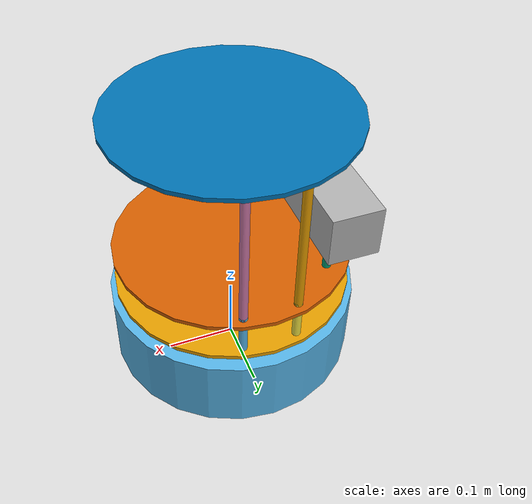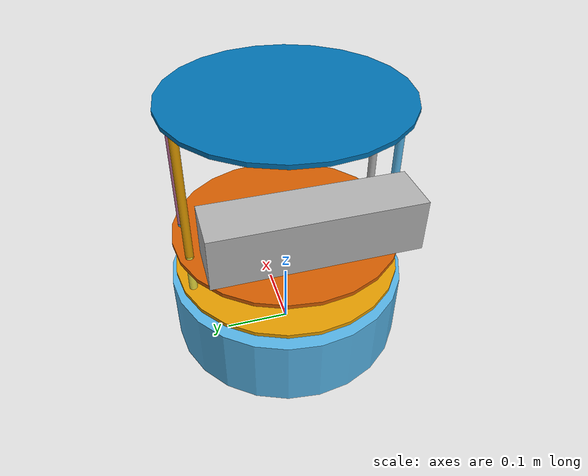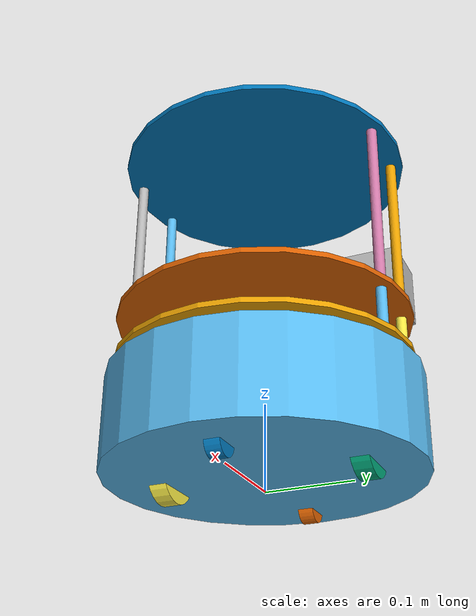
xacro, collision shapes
<?xml version="1.0"?>
<robot name="arm" xmlns:xacro="http://www.ros.org/wiki/xacro">

    <xacro:arg name="robot_namespace" default="/" />
    <xacro:arg name="MAX_ANGLE"       default="1" />
    <xacro:arg name="MIN_ANGLE"       default="-1" />
    <xacro:arg name="SPEED_ANGLE"     default="1" />
    <xacro:arg name="lidar_high"      default = "0.66053"/>
    <xacro:arg name="prefix"          default = "car"/>

    <xacro:include filename="$(find kobuki_gazebo)/urdf/xacro/gazebo/kobuki_base_description.urdf.xacro" />
    <xacro:kobuki/>

    <xacro:include filename="$(find kobuki_gazebo)/urdf/xacro/gazebo/hexagons.urdf.xacro"/>
    <xacro:stack_hexagons parent="base_link"/>

    <xacro:include filename="$(find kobuki_gazebo)/urdf/xacro/sensors/kinect.urdf.xacro"/>
    <xacro:sensor_kinect  parent="base_link"/>

    <gazebo>
      <plugin name="gazebo_ros_control" filename="libgazebo_ros_control.so">
        <robotNamespace>$(arg robot_namespace)</robotNamespace>
        <controlPeriod>0.01</controlPeriod>
        <robotSimType>gazebo_ros_control/DefaultRobotHWSim</robotSimType>
      </plugin>
    </gazebo>

</robot>

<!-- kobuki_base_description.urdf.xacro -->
<robot name="mbot" xmlns:xacro="http://www.ros.org/wiki/xacro">

    <!-- PROPERTY LIST -->
    <xacro:property name="M_PI" value="3.14159265354"/>

    <!-- body -->
    <xacro:property name="body_mass"   value="10" />
    <xacro:property name="body_h"            value="0.3"/>
    <xacro:property name="body_w"            value="0.85"/>
    <xacro:property name="body_l"              value="0.8"/>

    <!-- wheel_front -->
    <xacro:property name="wheel_front_mass"   value="1" />
    <xacro:property name="wheel_front_radius" value="0.125"/>
    <xacro:property name="wheel_front_x"            value="-0.3" />
    <xacro:property name="wheel_front_y"            value="0"/>
    <xacro:property name="wheel_front_z"             value="-0.1625"/>

     <!-- wheel_rear-->
    <xacro:property name="wheel_rear_mass"   value="1" />
    <xacro:property name="wheel_rear_radius" value="0.125"/>
    <xacro:property name="wheel_rear_x"            value="0.3" />
    <xacro:property name="wheel_rear_y"            value="0"/>
    <xacro:property name="wheel_rear_z"             value="-0.1625"/>

    <!-- wheel_left -->
    <xacro:property name="wheel_left_mass"   value="3" />
    <xacro:property name="wheel_left_radius" value="0.125"/>
    <xacro:property name="wheel_left_h"           value="0.06"/>
    <xacro:property name="wheel_left_x"            value="0" />
    <xacro:property name="wheel_left_y"            value="-0.38"/>
    <xacro:property name="wheel_left_z"             value="-0.1"/>

    <!-- wheel_right -->
    <xacro:property name="wheel_right_mass"   value="3" />
    <xacro:property name="wheel_right_radius" value="0.125"/>
    <xacro:property name="wheel_right_h"           value="0.06"/>
    <xacro:property name="wheel_right_x"            value="0" />
    <xacro:property name="wheel_right_y"            value="0.38"/>
    <xacro:property name="wheel_right_z"             value="-0.1"/>

    <xacro:property name="wheel_Separation"         value="0.76"/>
    <xacro:property name="wheel_diameter"             value="0.25"/>

    <!-- Defining the colors used in this robot -->
    <material name="yellow">
        <color rgba="1 0.4 0 1"/>
    </material>
    <material name="black">
        <color rgba="0 0 0 0.95"/>
    </material>
    <material name="gray">
        <color rgba="0.75 0.75 0.75 1"/>
    </material>
    <material name="white">
        <color rgba="1 1 1 1"/>
    </material>
    <material name="orange">
        <color rgba="1 0.27 0 1"/>
    </material>

    <!-- Macro for inertia matrix -->
    <xacro:macro name="box_inertial_matrix" params="m l w h">
        <inertial>
            <mass value="${m}" />
            <inertia ixx="${m*(h*h + l*l)/12}" ixy = "0" ixz = "0"
                iyy="${m*(w*w + l*l)/12}" iyz= "0"
                izz="${m*(w*w + h*h)/12}" />
        </inertial>
    </xacro:macro>

    <xacro:macro name="sphere_inertial_matrix" params="m r">
        <inertial>
            <mass value="${m}" />
            <inertia ixx="${2*m*r*r/5}" ixy="0" ixz="0"
                iyy="${2*m*r*r/5}" iyz="0"
                izz="${2*m*r*r/5}" />
        </inertial>
    </xacro:macro>

    <xacro:macro name="cylinder_inertial_matrix" params="m r h">
        <inertial>
            <mass value="${m}" />
            <inertia ixx="${m*(3*r*r+h*h)/12}" ixy = "0" ixz = "0"
                iyy="${m*(3*r*r+h*h)/12}" iyz = "0"
                izz="${m*r*r/2}" />
        </inertial>
    </xacro:macro>

    <xacro:macro name="kobuki">
        <link name="base_footprint"/>
            <joint name="base_joint" type="fixed">
            <origin xyz="0 0 0.0102" rpy="0 0 0" />
            <parent link="base_footprint"/>
            <child link="base_link" />
        </joint>
        <link name="base_link">
            <visual>
                <geometry>
                <!-- new mesh -->
                    <mesh filename="$(find kobuki_gazebo)/meshes/kobuki_robot/meshes/main_body.dae"/>
                </geometry>
                <origin xyz="0.001 0 0.05199" rpy="0 0 0"/>
            </visual>
            <collision name="base">
                <geometry>
                <cylinder length="0.10938" radius="0.178"/>
                </geometry>
                <origin xyz="0.0 0 0.05949" rpy="0 0 0"/>
            </collision>
            <inertial>
                <!-- COM experimentally determined -->
                <origin xyz="0.01 0 0"/>
                <mass value="2.4"/> <!-- 2.4/2.6 kg for small/big battery pack -->
                <inertia ixx="0.019995" ixy="0.0" ixz="0.0"
                        iyy="0.019995" iyz="0.0"
                        izz="0.03675" />
            </inertial>
        </link>

        <joint name="wheel_left_joint" type="continuous">
            <parent link="base_link"/>
            <child link="wheel_left_link"/>
            <origin xyz="0.00 ${0.23/2} 0.0250" rpy="${-M_PI/2} 0 0"/>
            <axis xyz="0 0 1"/>
        </joint>
        <link name="wheel_left_link">
            <visual>
                <geometry>
                    <mesh filename="$(find kobuki_gazebo)/meshes/kobuki_robot/meshes/wheel.dae"/>
                </geometry>
                <origin xyz="0 0 0" rpy="0 0 0"/>
            </visual>
            <collision>
                <geometry>
                <cylinder length="0.0206" radius="0.0352"/>
                </geometry>
                <origin rpy="0 0 0" xyz="0 0 0"/>
            </collision>
            <inertial>
                <mass value="0.01" />
                <origin xyz="0 0 0" />
                <inertia ixx="0.001" ixy="0.0" ixz="0.0"
                        iyy="0.001" iyz="0.0"
                        izz="0.001" />
            </inertial>
        </link>

        <joint name="wheel_right_joint" type="continuous">
            <parent link="base_link"/>
            <child link="wheel_right_link"/>
            <origin xyz="0.00 -${0.23/2} 0.0250" rpy="${-M_PI/2} 0 0"/>
            <axis xyz="0 0 1"/>
        </joint>
        <link name="wheel_right_link">
            <visual>
                <geometry>
                    <mesh filename="$(find kobuki_gazebo)/meshes/kobuki_robot/meshes/wheel.dae"/>
                </geometry>
                <origin xyz="0 0 0" rpy="0 0 0"/>
            </visual>
            <collision>
                <geometry>
                <cylinder length="0.0206" radius="0.0350"/>
                </geometry>
                <origin rpy="0 0 0" xyz="0 0 0"/>
            </collision>
            <inertial>
                <mass value="0.01" />
                <origin xyz="0 0 0" />
                <inertia ixx="0.001" ixy="0.0" ixz="0.0"
                        iyy="0.001" iyz="0.0"
                        izz="0.001" />
            </inertial>
        </link>

        <joint name="caster_front_joint" type="fixed">
            <parent link="base_link"/>
            <child link="caster_front_link"/>
            <origin xyz="0.115 0.0 0.007" rpy="${-M_PI/2} 0 0"/>
        </joint>
        <link name="caster_front_link">
            <collision>
                <geometry>
                <cylinder length="0.0176" radius="0.017"/>
                </geometry>
                <origin rpy="0 0 0" xyz="0 0 0"/>
            </collision>
            <inertial>
                <mass value="0.01" />
                <origin xyz="0 0 0" />
                <inertia ixx="0.001" ixy="0.0" ixz="0.0"
                        iyy="0.001" iyz="0.0"
                        izz="0.001" />
            </inertial>
        </link>

        <joint name="caster_back_joint" type="fixed">
            <parent link="base_link"/>
            <child link="caster_back_link"/>
            <origin xyz="-0.135 0.0 0.009" rpy="${-M_PI/2} 0 0"/>
        </joint>
        <link name="caster_back_link">
            <collision>
                <geometry>
                <cylinder length="0.0176" radius="0.017"/>
                </geometry>
                <origin rpy="0 0 0" xyz="0 0 0"/>
            </collision>
            <inertial>
                <mass value="0.01" />
                <origin xyz="0 0 0" />
                <inertia ixx="0.001" ixy="0.0" ixz="0.0"
                        iyy="0.001" iyz="0.0"
                        izz="0.001" />
            </inertial>
        </link>

        <!-- Kobuki's sensors -->
        <joint name="gyro_joint" type="fixed">
            <axis xyz="0 1 0"/>
            <origin xyz="0.056 0.062 0.0202" rpy="0 0 0"/>
            <parent link="base_link"/>
            <child link="gyro_link"/>
        </joint>
        <link name="gyro_link">
            <inertial>
                <mass value="0.001"/>
                <origin xyz="0 0 0" rpy="0 0 0"/>
                <inertia ixx="0.0001" ixy="0" ixz="0"
                        iyy="0.000001" iyz="0"
                        izz="0.0001"/>
            </inertial>
        </link>

        <joint name="cliff_sensor_left_joint" type="fixed">
            <origin xyz="0.08734 0.13601 0.0214" rpy="0 ${M_PI/2} 0" />
            <parent link="base_link"/>
            <child link="cliff_sensor_left_link" />
        </joint>
        <link name="cliff_sensor_left_link">
            <inertial>
                <mass value="0.0001" />
                <origin xyz="0 0 0" />
                <inertia ixx="0.0001" ixy="0.0" ixz="0.0"
                        iyy="0.0001" iyz="0.0"
                        izz="0.0001" />
            </inertial>
        </link>

        <joint name="cliff_sensor_right_joint" type="fixed">
            <origin xyz="0.085 -0.13601 0.0214" rpy="0 ${M_PI/2} 0" />
            <parent link="base_link"/>
            <child link="cliff_sensor_right_link" />
        </joint>
        <link name="cliff_sensor_right_link">
            <inertial>
                <mass value="0.0001" />
                <origin xyz="0 0 0" />
                <inertia ixx="0.0001" ixy="0.0" ixz="0.0"
                        iyy="0.0001" iyz="0.0"
                        izz="0.0001" />
            </inertial>
        </link>

        <joint name="cliff_sensor_front_joint" type="fixed">
            <origin xyz="0.156 0.00 0.0214" rpy="0 ${M_PI/2} 0" />
            <parent link="base_link"/>
            <child link="cliff_sensor_front_link" />
        </joint>
        <link name="cliff_sensor_front_link">
            <inertial>
                <mass value="0.0001" />
                <origin xyz="0 0 0" />
                <inertia ixx="0.0001" ixy="0.0" ixz="0.0"
                        iyy="0.0001" iyz="0.0"
                        izz="0.0001" />
            </inertial>
        </link>

        <!-- Kobuki Gazebo simulation details -->
        <gazebo reference="wheel_left_link">
            <mu1>1.0</mu1>
            <mu2>1.0</mu2>
            <kp>1000000.0</kp>
            <kd>100.0</kd>
            <minDepth>0.001</minDepth>
            <maxVel>1.0</maxVel>
        </gazebo>

        <gazebo reference="wheel_right_link">
            <mu1>1.0</mu1>
            <mu2>1.0</mu2>
            <kp>1000000.0</kp>
            <kd>100.0</kd>
            <minDepth>0.001</minDepth>
            <maxVel>1.0</maxVel>
        </gazebo>

        <gazebo reference="caster_front_link">
            <mu1>0.0</mu1>
            <mu2>0.0</mu2>
            <kp>1000000.0</kp>
            <kd>100.0</kd>
            <minDepth>0.001</minDepth>
            <maxVel>1.0</maxVel>
        </gazebo>

        <gazebo reference="caster_back_link">
            <mu1>0.0</mu1>
            <mu2>0.0</mu2>
            <kp>1000000.0</kp>
            <kd>100.0</kd>
            <minDepth>0.001</minDepth>
            <maxVel>1.0</maxVel>
        </gazebo>

        <gazebo reference="base_link">
            <mu1>0.3</mu1>
            <mu2>0.3</mu2>
            <sensor type="contact" name="bumpers">
                <always_on>true</always_on>
                <update_rate>50.0</update_rate>
                <visualize>true</visualize>
                <contact>
                    <collision>base_footprint_fixed_joint_lump__base_collision</collision>
                </contact>
                <plugin name="bumper_plugin" filename="libgazebo_ros_bumper.so">
                    <bumperTopicName>contact_state</bumperTopicName>
                </plugin>
            </sensor>
        </gazebo>

        <gazebo reference="cliff_sensor_left_link">
            <sensor type="ray" name="cliff_sensor_left">
                <always_on>true</always_on>
                <update_rate>50</update_rate>
                <visualize>true</visualize>
                <ray>
                    <scan>
                        <horizontal>
                            <samples>50</samples>
                            <resolution>1.0</resolution>
                            <min_angle>-0.0436</min_angle>  <!-- -2.5 degree -->
                            <max_angle>0.0436</max_angle> <!-- 2.5 degree -->
                        </horizontal>
                    </scan>
                    <range>
                        <min>0.01</min>
                        <max>0.15</max>
                        <resolution>1.0</resolution>
                    </range>
                </ray>
            </sensor>
        </gazebo>

        <gazebo reference="cliff_sensor_right_link">
            <sensor type="ray" name="cliff_sensor_right">
                <always_on>true</always_on>
                <update_rate>50</update_rate>
                <visualize>true</visualize>
                <ray>
                    <scan>
                        <horizontal>
                            <samples>50</samples>
                            <resolution>1.0</resolution>
                            <min_angle>-0.0436</min_angle>  <!-- -2.5 degree -->
                            <max_angle>0.0436</max_angle> <!-- 2.5 degree -->
                        </horizontal>
                    </scan>
                    <range>
                        <min>0.01</min>
                        <max>0.15</max>
                        <resolution>1.0</resolution>
                    </range>
                </ray>
            </sensor>
        </gazebo>

        <gazebo reference="cliff_sensor_front_link">
            <sensor type="ray" name="cliff_sensor_front">
                <always_on>true</always_on>
                <update_rate>50</update_rate>
                <visualize>true</visualize>
                <ray>
                    <scan>
                        <horizontal>
                            <samples>50</samples>
                            <resolution>1.0</resolution>
                            <min_angle>-0.0436</min_angle>  <!-- -2.5 degree -->
                            <max_angle>0.0436</max_angle> <!-- 2.5 degree -->
                        </horizontal>
                    </scan>
                    <range>
                        <min>0.01</min>
                        <max>0.15</max>
                        <resolution>1.0</resolution>
                    </range>
                </ray>
            </sensor>
        </gazebo>

        <gazebo reference="gyro_link">
            <sensor type="imu" name="imu">
                <always_on>true</always_on>
                <update_rate>50</update_rate>
                <visualize>false</visualize>
                <imu>
                    <noise>
                        <type>gaussian</type>
                        <rate>
                            <mean>0.0</mean>
                            <stddev>${0.0014*0.0014}</stddev> <!-- 0.25 x 0.25 (deg/s) -->
                            <bias_mean>0.0</bias_mean>
                            <bias_stddev>0.0</bias_stddev>
                        </rate>
                            <accel> <!-- not used in the plugin and real robot, hence using tutorial values -->
                                <mean>0.0</mean>
                                <stddev>1.7e-2</stddev>
                                <bias_mean>0.1</bias_mean>
                                <bias_stddev>0.001</bias_stddev>
                            </accel>
                    </noise>
                </imu>
            </sensor>
        </gazebo>

        <gazebo>
            <plugin name="kobuki_controller" filename="libgazebo_ros_kobuki.so">
                <publish_tf>1</publish_tf>
                <left_wheel_joint_name>wheel_left_joint</left_wheel_joint_name>
                <right_wheel_joint_name>wheel_right_joint</right_wheel_joint_name>
                <wheel_separation>.230</wheel_separation>
                <wheel_diameter>0.070</wheel_diameter>
                <torque>1.0</torque>
                <velocity_command_timeout>0.6</velocity_command_timeout>
                <cliff_sensor_left_name>cliff_sensor_left</cliff_sensor_left_name>
                <cliff_sensor_center_name>cliff_sensor_front</cliff_sensor_center_name>
                <cliff_sensor_right_name>cliff_sensor_right</cliff_sensor_right_name>
                <cliff_detection_threshold>0.04</cliff_detection_threshold>
                <bumper_name>bumpers</bumper_name>
                <imu_name>imu</imu_name>
            </plugin>
        </gazebo>

        <gazebo>
            <plugin name="differential_drive_controller"  filename="libgazebo_ros_diff_drive.so">
                <alwaysOn>true</alwaysOn>
                <publishWheelTF>true</publishWheelTF>
                <rosDebugLevel>Debug</rosDebugLevel>
                <robotNamespace>/</robotNamespace>
                <publishTf>1</publishTf>
                <publishWheelJointState>true</publishWheelJointState>
                <alwaysOn>true</alwaysOn>
                <updateRate>100.0</updateRate>
                <legacyMode>true</legacyMode>
                <leftJoint>wheel_left_joint</leftJoint>
                <rightJoint>wheel_right_joint</rightJoint>
                <wheelSeparation>.230</wheelSeparation>
                <wheelDiameter>0.070</wheelDiameter>
                <broadcastTF>0.1</broadcastTF>
                <wheelTorque>1</wheelTorque>
                <wheelAcceleration>1</wheelAcceleration>
                <commandTopic>/kabuki/cmd_vel</commandTopic>
                <odometryFrame>odom</odometryFrame>
                <odometryTopic>/kabuki/odom</odometryTopic>
                <robotBaseFrame>base_link</robotBaseFrame>
                <publishOdomTF>true</publishOdomTF>
                <odometrySource>world</odometrySource>
            </plugin>
        </gazebo>
    </xacro:macro>
</robot>

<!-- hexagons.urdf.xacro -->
<!--
  Hexagon stacks
 -->
<robot name="stack_hexagons" xmlns:xacro="http://ros.org/wiki/xacro">

  <!-- Xacro macros -->
  <!-- Pole macros -->
  <xacro:macro name="stack_bottom_pole" params="parent number x_loc y_loc z_loc">
    <joint name="pole_bottom_${number}_joint" type="fixed">
      <origin xyz="${x_loc} ${y_loc} ${z_loc}" rpy="0 0 0"/>
      <parent link="${parent}"/>
      <child link="pole_bottom_${number}_link"/>
    </joint>
    <link name="pole_bottom_${number}_link">
      <visual>
        <origin xyz="0 0 0" rpy="0 0 0"/>
        <geometry>
          <mesh filename="$(find kobuki_gazebo)/meshes/kobuki_robot/stacks/hexagons/pole_bottom.dae"/>
        </geometry>
      </visual>
      <collision>
        <origin xyz="0 0 0" rpy="0 0 0"/>
        <geometry>
          <cylinder length="0.0492" radius="0.006"/>
        </geometry>
      </collision>
      <inertial>
        <mass value="0.008"/>
        <origin xyz="0 0 0" rpy="0 0 0"/>
        <inertia ixx="0.000001686" ixy="0.0" ixz="0.0"
                 iyy="0.000001686" iyz="0.0"
                 izz="0.000000144"/>
      </inertial>
    </link>
  </xacro:macro>

  <xacro:macro name="stack_middle_pole" params="parent number x_loc y_loc z_loc">
    <joint name="pole_middle_${number}_joint" type="fixed">
      <origin xyz="${x_loc} ${y_loc} ${z_loc}" rpy="0 0 0" />
      <parent link="${parent}"/>
      <child link="pole_middle_${number}_link"/>
    </joint>
    <link name="pole_middle_${number}_link">
      <visual>
        <origin xyz="0 0 0" rpy="0 ${M_PI} 0"/>
        <geometry>
          <mesh filename="$(find kobuki_gazebo)/meshes/kobuki_robot/stacks/hexagons/pole_middle.dae"/>
        </geometry>
      </visual>
      <collision>
        <origin xyz="0 0 0" rpy="0 0 0"/>
        <geometry>
          <cylinder length="0.0608" radius="0.006"/>
        </geometry>
      </collision>
      <inertial>
        <mass value="0.012"/>
        <origin xyz="0 0 0"/>
        <inertia ixx="0.000003805" ixy="0.0" ixz="0.0"
                 iyy="0.000003805" iyz="0.0"
                 izz="0.000000216"/>
      </inertial>
    </link>
  </xacro:macro>

  <xacro:macro name="stack_top_pole" params="parent number x_loc y_loc z_loc">
    <joint name="pole_top_${number}_joint" type="fixed">
      <origin xyz="${x_loc} ${y_loc} ${z_loc}" rpy="0 0 0"/>
      <parent link="${parent}"/>
      <child link="pole_top_${number}_link"/>
    </joint>
    <link name="pole_top_${number}_link">
      <visual>
        <origin xyz=" 0 0 0" rpy="0 0 0"/>
        <geometry>
          <mesh filename="$(find kobuki_gazebo)/meshes/kobuki_robot/stacks/hexagons/pole_top.dae"/>
        </geometry>
      </visual>
      <collision>
        <origin xyz="0 0 0" rpy="0 0 0"/>
        <geometry>
          <cylinder length="0.2032" radius="0.006"/>
        </geometry>
      </collision>
      <inertial>
        <mass value="0.060"/>
        <origin xyz="0 0 0"/>
        <inertia ixx="0.000206991" ixy="0.0" ixz="0.0"
                 iyy="0.000206991" iyz="0.0"
                 izz="0.000001080"/>
      </inertial>
    </link>
  </xacro:macro>

  <xacro:macro name="stack_3d_sensor_pole" params="parent number x_loc y_loc z_loc">
    <joint name="pole_kinect_${number}_joint" type="fixed">
      <origin xyz="${x_loc} ${y_loc} ${z_loc}" rpy="0 0 0"/>
      <parent link="${parent}"/>
      <child link="pole_kinect_${number}_link"/>
    </joint>
    <link name="pole_kinect_${number}_link">
      <visual>
        <origin xyz="0 0 -0.01" rpy="0 0 0"/>
        <geometry>
          <mesh filename="$(find kobuki_gazebo)/meshes/kobuki_robot/sensors/sensor_pole.dae" />
        </geometry>
      </visual>
      <collision>
        <origin xyz="0 0 0" rpy="0 0 0"/>
        <geometry>
          <cylinder length="0.0936" radius="0.006"/>
        </geometry>
      </collision>
      <inertial>
        <mass value="0.020"/>
        <origin xyz="0 0 0"/>
        <inertia ixx="0.000014782" ixy="0.0" ixz="0.0"
                 iyy="0.000014782" iyz="0.0"
                 izz="0.000000360"/>
      </inertial>
    </link>
  </xacro:macro>

  <xacro:macro name="stack_hexagons" params="parent">
    <xacro:stack_bottom_pole parent="${parent}" number="0" x_loc= "0.120" y_loc= "0.082" z_loc="0.1028"/>
    <xacro:stack_bottom_pole parent="${parent}" number="1" x_loc= "0.055" y_loc= "0.120" z_loc="0.1028"/>
    <xacro:stack_bottom_pole parent="${parent}" number="2" x_loc="-0.055" y_loc= "0.120" z_loc="0.1028"/>
    <xacro:stack_bottom_pole parent="${parent}" number="3" x_loc= "0.120" y_loc="-0.082" z_loc="0.1028"/>
    <xacro:stack_bottom_pole parent="${parent}" number="4" x_loc= "0.055" y_loc="-0.120" z_loc="0.1028"/>
    <xacro:stack_bottom_pole parent="${parent}" number="5" x_loc="-0.055" y_loc="-0.120" z_loc="0.1028"/>

    <joint name="plate_bottom_joint" type="fixed">
      <origin xyz="0.02364 0.0 0.1306" rpy="0 0 0"/>
      <parent link="${parent}"/>
      <child link="plate_bottom_link"/>
    </joint>
    <link name="plate_bottom_link">
      <visual>
        <origin xyz="0 0 0" rpy="0 0 0"/>
        <geometry>
          <mesh filename="$(find kobuki_gazebo)/meshes/kobuki_robot/stacks/hexagons/plate_bottom.dae"/>
        </geometry>
      </visual>
      <collision>
        <origin xyz="-0.02364 0 0" rpy="0 0 0"/>
        <geometry>
          <cylinder length="0.006" radius="0.170"/>
        </geometry>
      </collision>
      <inertial>
        <mass value="0.520" />
        <origin xyz="0 0 0" />
        <inertia ixx="0.003328" ixy="0.0" ixz="0.0"
                 iyy="0.003328" iyz="0.0"
                 izz="0.006656" />
      </inertial>
    </link>

    <xacro:stack_middle_pole parent="${parent}" number="0" x_loc= "0.0381" y_loc= "0.1505" z_loc="0.1640"/>
    <xacro:stack_middle_pole parent="${parent}" number="1" x_loc= "0.0381" y_loc="-0.1505" z_loc="0.1640"/>
    <xacro:stack_middle_pole parent="${parent}" number="2" x_loc="-0.0381" y_loc= "0.1505" z_loc="0.1640"/>
    <xacro:stack_middle_pole parent="${parent}" number="3" x_loc="-0.0381" y_loc="-0.1505" z_loc="0.1640"/>

    <joint name="plate_middle_joint" type="fixed">
      <origin xyz="-0.01364 0.0 0.1874" rpy="0 0 0"/>
      <parent link="${parent}"/>
      <child link="plate_middle_link"/>
    </joint>
    <link name="plate_middle_link">
      <visual>
        <origin xyz="0 0 0" rpy="0 0 0"/>
        <geometry>
          <mesh filename="$(find kobuki_gazebo)/meshes/kobuki_robot/stacks/hexagons/plate_middle.dae"/>
        </geometry>
      </visual>
      <collision>
        <origin xyz="0.01364 0.0 0.0" rpy="0 0 0"/>
        <geometry>
          <cylinder length="0.006" radius="0.170"/>
        </geometry>
      </collision>
      <inertial>
        <mass value="0.520" />
        <origin xyz="0 0 0" />
        <inertia ixx="0.003328" ixy="0.0" ixz="0.0"
                 iyy="0.003328" iyz="0.0"
                 izz="0.006656" />
      </inertial>
    </link>

    <xacro:stack_top_pole parent="${parent}" number="0" x_loc= "0.0381" y_loc= "0.1505" z_loc="0.2920"/>
    <xacro:stack_top_pole parent="${parent}" number="1" x_loc= "0.0381" y_loc="-0.1505" z_loc="0.2920"/>
    <xacro:stack_top_pole parent="${parent}" number="2" x_loc="-0.0381" y_loc= "0.1505" z_loc="0.2920"/>
    <xacro:stack_top_pole parent="${parent}" number="3" x_loc="-0.0381" y_loc="-0.1505" z_loc="0.2920"/>
    <xacro:stack_3d_sensor_pole parent="${parent}" number="0" x_loc="-0.1024" y_loc= "0.098" z_loc="0.2372"/>
    <xacro:stack_3d_sensor_pole parent="${parent}" number="1" x_loc="-0.1024" y_loc="-0.098" z_loc="0.2372"/>

    <joint name="plate_top_joint" type="fixed">
      <origin xyz="-0.01364 0.0  0.3966" rpy="0 0 0"/>
      <parent link="${parent}"/>
      <child link="plate_top_link"/>
    </joint>
    <link name="plate_top_link">
      <visual>
        <origin xyz="0 0 0" rpy="0 0 0"/>
        <geometry>
          <mesh filename="$(find kobuki_gazebo)/meshes/kobuki_robot/stacks/hexagons/plate_top.dae"/>
        </geometry>
      </visual>
      <collision>
        <origin xyz="0.01364 0 0" rpy="0 0 0"/>
        <geometry>
          <cylinder length="0.006" radius="0.170"/>
        </geometry>
      </collision>
      <inertial>
        <mass value="0.520"/>
        <origin xyz="0 0 0"/>
        <inertia ixx="0.003328" ixy="0.0" ixz="0.0"
                 iyy="0.003328" iyz="0.0"
                 izz="0.006656" />
      </inertial>
    </link>
  </xacro:macro>
</robot>

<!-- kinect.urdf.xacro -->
<robot xmlns:xacro="http://www.ros.org/wiki/xacro" name="kinect_cam">

  <xacro:property name="kinect_cam_py" value="-0.0125"/>
  <xacro:property name="cam_px" value="-0.087" />
	<xacro:property name="cam_pz" value="0.2870" />
	<xacro:property name="cam_or" value="0" />
	<xacro:property name="cam_op" value="0" />
	<xacro:property name="cam_oy" value="0" />

  <xacro:macro name="sensor_kinect" params="parent">
    <joint name="camera_rgb_joint" type="fixed">
      <origin xyz="${cam_px} ${kinect_cam_py} ${cam_pz}" rpy="${cam_or} ${cam_op} ${cam_oy}"/>
      <parent link="${parent}"/>
      <child link="camera_rgb_frame" />
    </joint>
    <link name="camera_rgb_frame"/>

    <joint name="camera_rgb_optical_joint" type="fixed">
      <origin xyz="0 0 0" rpy="${-M_PI/2} 0 ${-M_PI/2}" />
      <parent link="camera_rgb_frame" />
      <child link="camera_rgb_optical_frame" />
    </joint>
    <link name="camera_rgb_optical_frame"/>

    <joint name="camera_joint" type="fixed">
      <origin xyz="-0.031 ${-kinect_cam_py} -0.016" rpy="0 0 0"/>
      <parent link="camera_rgb_frame"/>
      <child link="camera_link"/>
    </joint>
      <link name="camera_link">
      <visual>
       <origin xyz="0 0 0" rpy="0 0 ${M_PI/2}"/>
        <geometry>
         <mesh filename="$(find kobuki_gazebo)/meshes/kobuki_robot/sensors/kinect.dae"/>
        </geometry>
      </visual>
  	  <collision>
        <origin xyz="0.0 0.0 0.0" rpy="0 0 0"/>
  	    <geometry>
  	      <box size="0.07271 0.27794 0.073"/>
  	    </geometry>
  	  </collision>
      <inertial>
        <mass value="0.564" />
        <origin xyz="0 0 0" />
        <inertia ixx="0.003881243" ixy="0.0" ixz="0.0"
                 iyy="0.000498940" iyz="0.0"
                 izz="0.003879257" />
      </inertial>
    </link>

    <joint name="camera_depth_joint" type="fixed">
      <origin xyz="0 ${2 * -kinect_cam_py} 0" rpy="0 0 0" />
      <parent link="camera_rgb_frame" />
      <child link="camera_depth_frame" />
    </joint>
    <link name="camera_depth_frame"/>

    <joint name="camera_depth_optical_joint" type="fixed">
      <origin xyz="0 0 0" rpy="${-M_PI/2} 0 ${-M_PI/2}" />
      <parent link="camera_depth_frame" />
      <child link="camera_depth_optical_frame" />
    </joint>
    <link name="camera_depth_optical_frame"/>

    <gazebo reference="camera_link">
      <sensor type="depth" name="camera">
        <always_on>true</always_on>
        <update_rate>20.0</update_rate>
        <camera>
          <horizontal_fov>${60.0*M_PI/180.0}</horizontal_fov>
          <image>
            <format>B8G8R8</format>
            <width>640</width>
            <height>480</height>
          </image>
          <clip>
            <near>0.05</near>
            <far>8.0</far>
          </clip>
        </camera>
        <plugin name="kinect_camera_controller" filename="libgazebo_ros_openni_kinect.so">
          <cameraName>camera</cameraName>
          <alwaysOn>true</alwaysOn>
          <updateRate>10</updateRate>
          <imageTopicName>rgb/image_raw</imageTopicName>
          <depthImageTopicName>depth/image_raw</depthImageTopicName>
          <pointCloudTopicName>depth/points</pointCloudTopicName>
          <cameraInfoTopicName>rgb/camera_info</cameraInfoTopicName>
          <depthImageCameraInfoTopicName>depth/camera_info</depthImageCameraInfoTopicName>
          <frameName>camera_depth_optical_frame</frameName>
          <baseline>0.1</baseline>
          <distortion_k1>0.0</distortion_k1>
          <distortion_k2>0.0</distortion_k2>
          <distortion_k3>0.0</distortion_k3>
          <distortion_t1>0.0</distortion_t1>
          <distortion_t2>0.0</distortion_t2>
          <pointCloudCutoff>0.4</pointCloudCutoff>
        </plugin>
      </sensor>
    </gazebo>
  </xacro:macro>
</robot>
